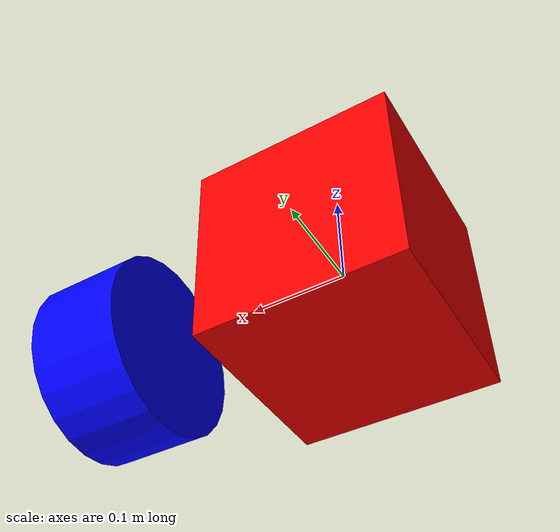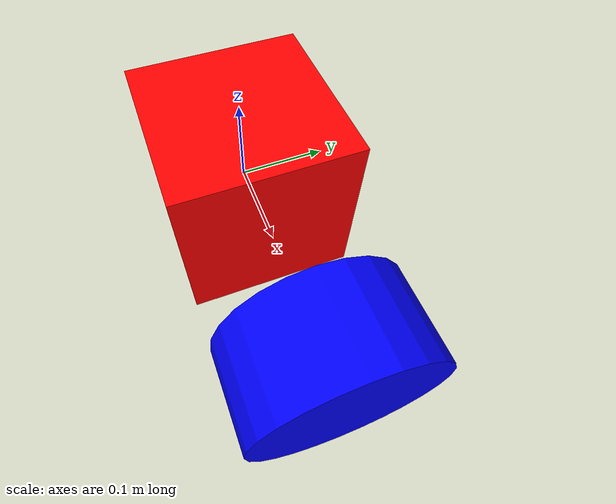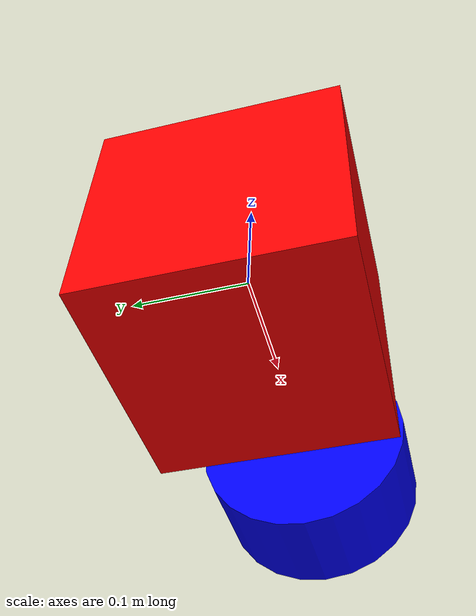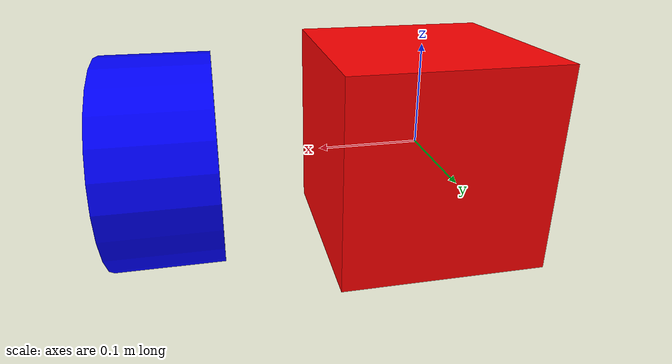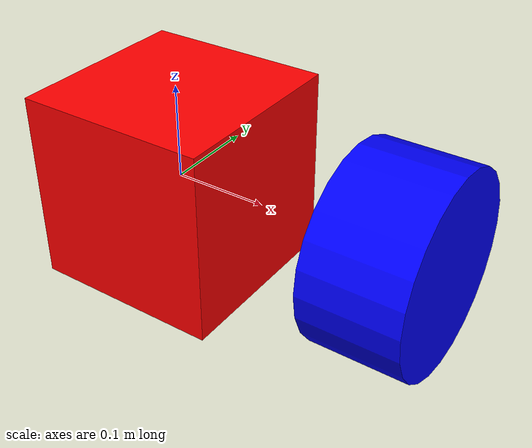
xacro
<?xml version="1.0"?>
<robot xmlns:xacro="http://www.ros.org/wiki/xacro">
    <xacro:include filename="inertial_macros.urdf.xacro"/>

    <material name="red">
        <color rgba="1.0 0.0 0.0 1.0"/>
    </material>

    <material name="blue">
        <color rgba="0.0 0.0 1.0 1.0"/>
    </material>

    <joint name="thruster_joint" type="continuous">
        <origin xyz="0 0 0" rpy="0 0 0"/>
        <parent link="base_link"/>
        <child link="thruster"/>
        <axis xyz="1.0 0.0 0.0"/>
    </joint>

    <link name="base_link">
        <visual>
            <origin xyz= "0 0 0" rpy = "0 0 0"/>
            <geometry>
                <box size="0.2 0.2 0.2"/>
            </geometry>
            <material name="red"/>
        </visual>

        <collision>
            <origin xyz= "0 0 0" rpy = "0 0 0"/>
            <geometry>
                <box size="0.2 0.2 0.2"/>
            </geometry>
        </collision>

        <xacro:inertial_box mass="4" x="0.2" y="0.2" z="0.2">
            <origin xyz= "0 0 0" rpy = "0 0 0"/>
        </xacro:inertial_box>
    </link>

    <link name="thruster">
        <visual>
            <origin xyz="0.25 0 0" rpy="0 ${-pi/2} 0"/>
            <geometry>
                <cylinder radius="0.1" length="0.1"/>
            </geometry>
            <material name="blue"/>
        </visual>
        <xacro:inertial_box mass="0.01" x="0.001" y="0.001" z="0.001">
            <origin xyz= "0 0 0" rpy = "0 0 0"/>
        </xacro:inertial_box>
    </link>
</robot>
